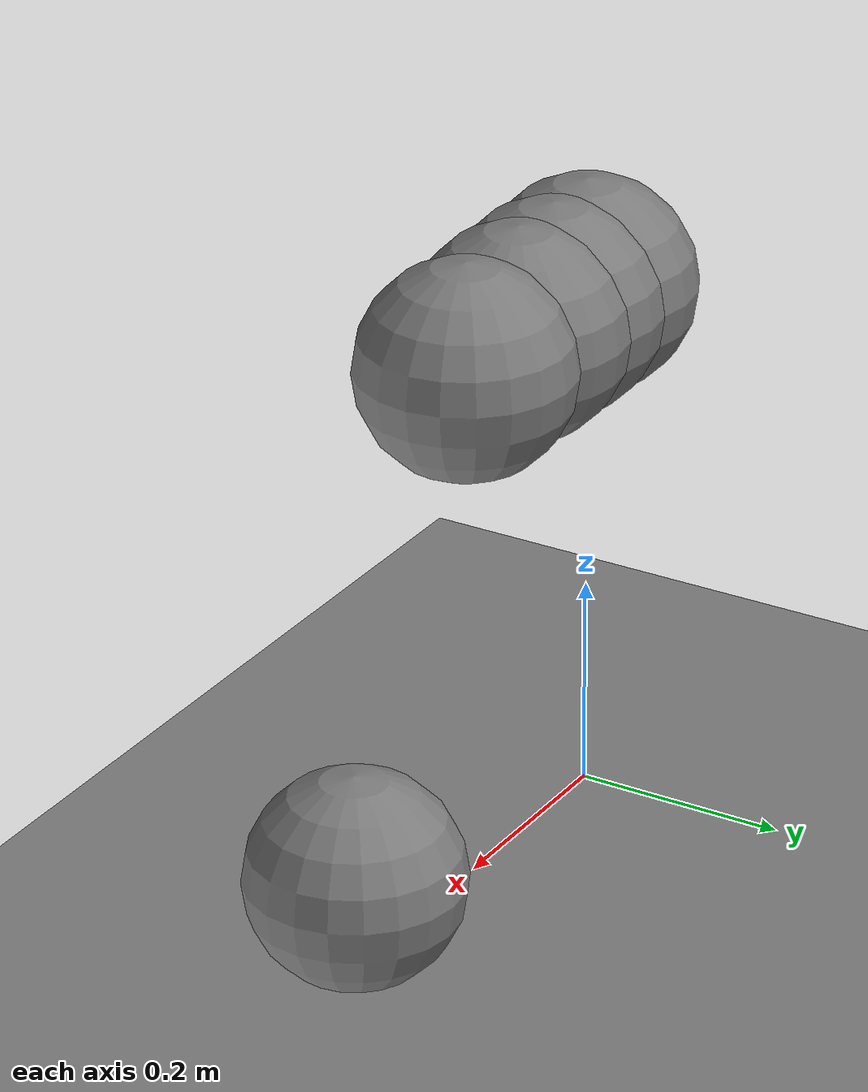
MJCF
<mujoco model="weld_model">
  <option timestep="0.002"/>
  <worldbody>
    <geom name="floor" type="plane" size="5 5 0.1"/>

    <!-- Welded to WORLD (no joint): joins weld group 0 with the floor. -->
    <body name="anchor" pos="0 0 0.5">
      <geom name="g_anchor" type="sphere" size="0.1"/>

      <!-- Articulated off the anchor. -->
      <body name="link1" pos="0.12 0 0">
        <joint name="j1" type="hinge" axis="0 1 0"/>
        <geom name="g_link1" type="sphere" size="0.1"/>

        <!-- WELDED to link1 -> same weld group, and overlapping it. -->
        <body name="weld1" pos="0.09 0 0">
          <geom name="g_weld1" type="sphere" size="0.1"/>
        </body>

        <!-- Articulated child of link1, hence a SIBLING of weld1. -->
        <body name="link2" pos="0.09 0 0">
          <joint name="j2" type="hinge" axis="0 1 0"/>
          <geom name="g_link2" type="sphere" size="0.1"/>
        </body>
      </body>
    </body>

    <!-- A SECOND body welded to world, overlapping `anchor`. Both are weld 0,
         so this pair is filtered by the RULE rather than by not touching. -->
    <body name="anchor2" pos="0.06 0 0.5">
      <geom name="g_anchor2" type="sphere" size="0.1"/>
    </body>

    <!-- Free body resting ON the floor: parent is world, and the world
         exemption is what lets this contact exist at all. -->
    <body name="ball" pos="0.4 0 0.09">
      <freejoint/>
      <geom name="g_ball" type="sphere" size="0.1"/>
    </body>
  </worldbody>
</mujoco>
